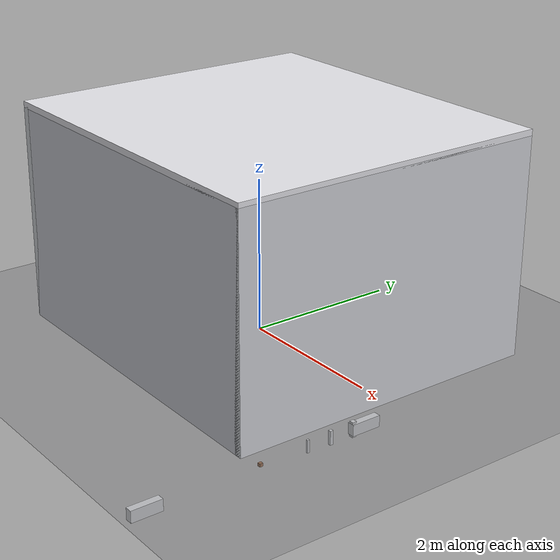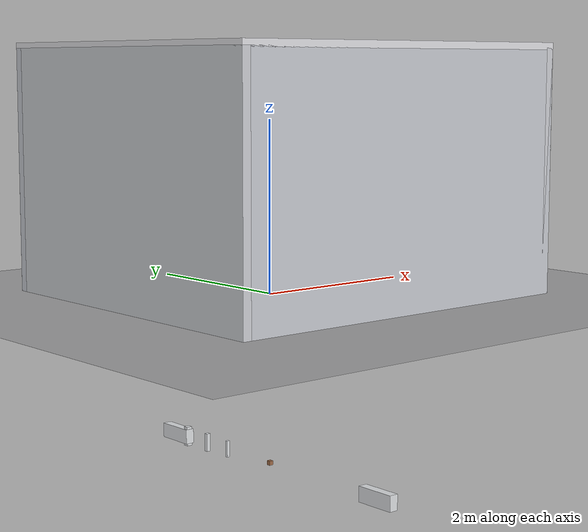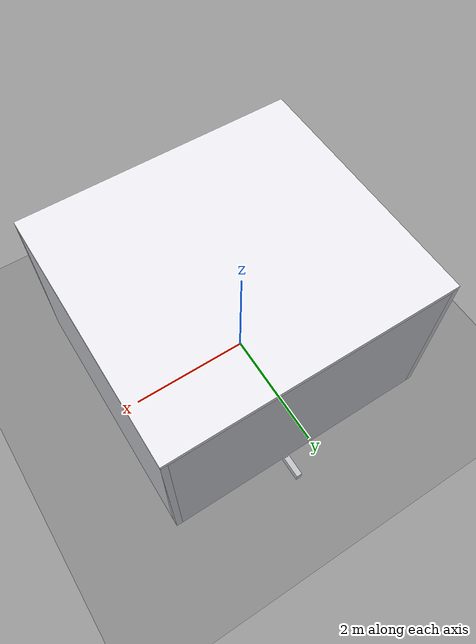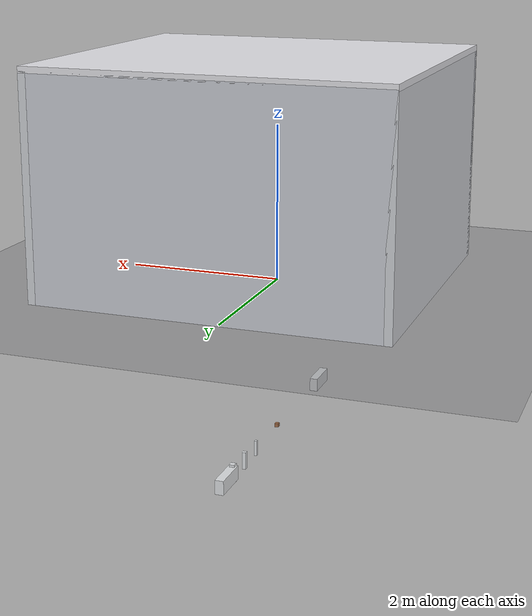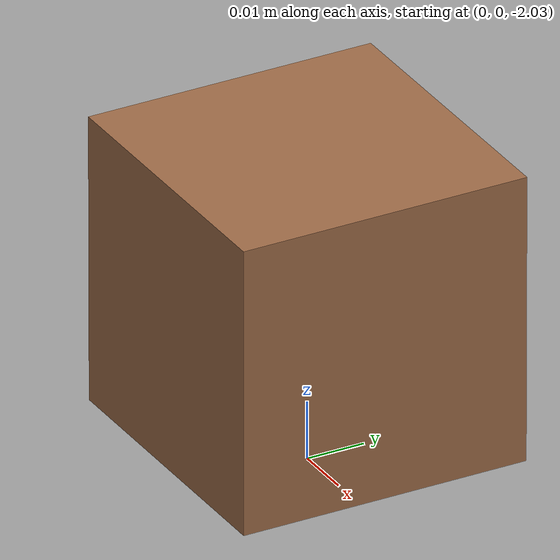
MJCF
<mujoco model="pact_place_corridor_v4">
  <compiler angle="radian" autolimits="true" boundmass="0" balanceinertia="true"/>
  <option impratio="10" gravity="0 0 -9.8" integrator="implicitfast" cone="elliptic" jacobian="sparse" noslip_iterations="4">
    <flag multiccd="enable" contact="enable" warmstart="enable"/>
  </option>
  <size njmax="6000" nconmax="6000"/>
  <visual>
    <global offwidth="1280" offheight="720"/>
    <map znear="0.001"/>
    <headlight ambient="0.5 0.5 0.5" diffuse="0.65 0.65 0.65"/>
  </visual>
  <asset>
    <texture name="benchtex" type="2d" builtin="flat" rgb1="0.85 0.86 0.88" width="32" height="32"/>
    <material name="bench" texture="benchtex" reflectance="0.1"/>
    <texture name="floortex" type="2d" builtin="checker" rgb1="0.46 0.46 0.48" rgb2="0.40 0.40 0.42" width="300" height="300"/>
    <material name="floormat" texture="floortex" texrepeat="10 10" reflectance="0.05"/>
    <material name="traymat" rgba="0.25 0.48 0.68 1" reflectance="0.08"/>
  </asset>
  <default>
    <default class="hood">
      <geom contype="8" conaffinity="15" group="0" friction="0.9 0.9 0.001"
            solref="0.02 1" solimp="0.998 0.998 0.001" density="700"
            rgba="0.88 0.89 0.90 1"/>
    </default>
  </default>
  <worldbody>
    <light name="l_key" pos="0.4 0.5 2.6" dir="0 0 -1" diffuse="0.95 0.95 0.95"/>
    <light name="l_fill" pos="-0.6 -0.7 2.1" dir="0.3 0.3 -1" diffuse="0.5 0.5 0.5"/>
    <light name="l_hood" pos="0.85 0 1.55" dir="0 0 -1" diffuse="0.6 0.6 0.6"/>
    <geom name="floor" type="plane" size="5 5 0.1" pos="0 0 0" material="floormat"
          contype="8" conaffinity="15"/>

    <geom name="room_wall_back" class="hood" type="box" pos="-2.0 0 1.4"
          size="0.05 2.05 1.4" rgba="0.82 0.83 0.85 1"/>
    <geom name="room_wall_front" class="hood" type="box" pos="2.4 0 1.4"
          size="0.05 2.05 1.4" rgba="0.82 0.83 0.85 1"/>
    <geom name="room_wall_left" class="hood" type="box" pos="0.2 2.0 1.4"
          size="2.25 0.05 1.4" rgba="0.80 0.81 0.84 1"/>
    <geom name="room_wall_right" class="hood" type="box" pos="0.2 -2.0 1.4"
          size="2.25 0.05 1.4" rgba="0.80 0.81 0.84 1"/>
    <geom name="room_ceiling" class="hood" type="box" pos="0.2 0 2.82"
          size="2.25 2.05 0.04" rgba="0.90 0.90 0.92 1"/>

    <geom name="bench_top" class="hood" type="box" pos="0.95 0 0.70"
          size="0.45 0.60 0.02" material="bench"/>
    <geom name="bench_body" class="hood" type="box" pos="0.95 0 0.35"
          size="0.42 0.57 0.33" rgba="0.80 0.81 0.83 1"/>
    <geom name="hood_side_l" class="hood" type="box" pos="0.95 0.45 1.12"
          size="0.40 0.012 0.40"/>
    <geom name="hood_side_r" class="hood" type="box" pos="0.95 -0.45 1.12"
          size="0.40 0.012 0.40"/>
    <geom name="hood_back" class="hood" type="box" pos="1.36 0 1.12"
          size="0.012 0.46 0.40"/>
    <geom name="hood_top" class="hood" type="box" pos="0.95 0 1.53"
          size="0.42 0.46 0.015"/>
    <geom name="hood_frame_l" class="hood" type="box" pos="0.58 0.45 1.12"
          size="0.02 0.02 0.40"/>
    <geom name="hood_frame_r" class="hood" type="box" pos="0.58 -0.45 1.12"
          size="0.02 0.02 0.40"/>

    <body name="sash" mocap="true" pos="0.58 0 1.30">
      <geom name="sash_g" class="hood" type="box" size="0.015 0.44 0.025"
            rgba="0.62 0.64 0.66 1"/>
    </body>
    <body name="jamb_l" mocap="true" pos="0.58 0.35 0.92">
      <geom name="jamb_l_g" class="hood" type="box" size="0.012 0.18 0.20"/>
    </body>
    <body name="jamb_r" mocap="true" pos="0.58 -0.35 0.92">
      <geom name="jamb_r_g" class="hood" type="box" size="0.012 0.18 0.20"/>
    </body>

    <!-- Legacy bars remain available because the inherited fumehood sampler parks
         them explicitly. They are never activated by the PACT corridor sampler. -->
    <body name="protr_s" mocap="true" pos="0 0.8 -2.0">
      <geom name="protr_s_g" class="hood" type="box" size="0.0175 0.0175 0.10"/>
    </body>
    <body name="protr_m" mocap="true" pos="0 1.2 -2.0">
      <geom name="protr_m_g" class="hood" type="box" size="0.025 0.025 0.11"/>
    </body>
    <body name="protr_l" mocap="true" pos="0 1.6 -2.0">
      <geom name="protr_l_g" class="hood" type="box" size="0.035 0.035 0.12"/>
    </body>

    <body name="pact_intrusion_left" mocap="true" pos="0 1.8 -2.0">
      <geom name="pact_intrusion_left_g" class="hood" type="box"
            size="0.055 0.240 0.090" rgba="0.88 0.89 0.90 1"/>
    </body>
    <body name="pact_intrusion_right" mocap="true" pos="0 -1.8 -2.0">
      <geom name="pact_intrusion_right_g" class="hood" type="box"
            size="0.055 0.240 0.090" rgba="0.88 0.89 0.90 1"/>
    </body>

    <body name="place_pedestal" pos="0.35 0.32 0">
      <geom name="place_pedestal_base_g" class="hood" type="box" pos="0 0 0.05"
            size="0.10 0.10 0.05" rgba="0.34 0.36 0.40 1"/>
      <geom name="place_pedestal_stem_g" class="hood" type="box" pos="0 0 0.39"
            size="0.07 0.07 0.29" rgba="0.40 0.42 0.46 1"/>
    </body>
    <body name="place_receptacle" pos="0.35 0.32 0">
      <!-- PickAndPlacePlannerPolicy queries the visual-only body AABB when it
           computes place height, so retain a non-colliding visual twin. -->
      <geom name="place_receptacle_floor_visual_g" type="box" pos="0 0 0.70"
            size="0.10 0.10 0.02" material="traymat" contype="0" conaffinity="0"
            group="1"/>
      <geom name="place_receptacle_floor_g" type="box" pos="0 0 0.70"
            size="0.10 0.10 0.02" material="traymat" contype="8" conaffinity="15"
            friction="1.1 0.9 0.002" solref="0.02 1" solimp="0.998 0.998 0.001"/>
    </body>
    <!-- Raised side rails retain lateral placement error. Both x edges stay
         open so neither the home arm nor link 2 obstructs the passage. -->
    <body name="place_receptacle_lips" pos="0.35 0.32 0">
      <geom name="place_receptacle_lip_left_g" type="box" pos="0 0.085 0.745"
            size="0.07 0.015 0.025" material="traymat" contype="8" conaffinity="15"/>
      <geom name="place_receptacle_lip_right_g" type="box" pos="0 -0.085 0.745"
            size="0.07 0.015 0.025" material="traymat" contype="8" conaffinity="15"/>
    </body>

    <body name="pact_clutter_00" mocap="true" pos="0 0 -2.0">
      <geom name="pact_clutter_00_g" class="hood" type="box"
            size="0.025 0.025 0.025" rgba="0.62 0.42 0.28 1"/>
    </body>
    <body name="pact_clutter_01" mocap="true" pos="0 0 -2.0">
      <geom name="pact_clutter_01_g" class="hood" type="box"
            size="0.025 0.025 0.025" rgba="0.62 0.42 0.28 1"/>
    </body>
    <body name="pact_clutter_02" mocap="true" pos="0 0 -2.0">
      <geom name="pact_clutter_02_g" class="hood" type="box"
            size="0.025 0.025 0.025" rgba="0.62 0.42 0.28 1"/>
    </body>
    <body name="pact_clutter_03" mocap="true" pos="0 0 -2.0">
      <geom name="pact_clutter_03_g" class="hood" type="box"
            size="0.025 0.025 0.025" rgba="0.62 0.42 0.28 1"/>
    </body>
    <body name="pact_clutter_04" mocap="true" pos="0 0 -2.0">
      <geom name="pact_clutter_04_g" class="hood" type="box"
            size="0.025 0.025 0.025" rgba="0.62 0.42 0.28 1"/>
    </body>
    <body name="pact_clutter_05" mocap="true" pos="0 0 -2.0">
      <geom name="pact_clutter_05_g" class="hood" type="box"
            size="0.025 0.025 0.025" rgba="0.62 0.42 0.28 1"/>
    </body>
    <body name="pact_clutter_06" mocap="true" pos="0 0 -2.0">
      <geom name="pact_clutter_06_g" class="hood" type="box"
            size="0.025 0.025 0.025" rgba="0.62 0.42 0.28 1"/>
    </body>
    <body name="pact_clutter_07" mocap="true" pos="0 0 -2.0">
      <geom name="pact_clutter_07_g" class="hood" type="box"
            size="0.025 0.025 0.025" rgba="0.62 0.42 0.28 1"/>
    </body>
    <body name="pact_clutter_08" mocap="true" pos="0 0 -2.0">
      <geom name="pact_clutter_08_g" class="hood" type="box"
            size="0.025 0.025 0.025" rgba="0.62 0.42 0.28 1"/>
    </body>
    <body name="pact_clutter_09" mocap="true" pos="0 0 -2.0">
      <geom name="pact_clutter_09_g" class="hood" type="box"
            size="0.025 0.025 0.025" rgba="0.62 0.42 0.28 1"/>
    </body>
    <body name="pact_clutter_10" mocap="true" pos="0 0 -2.0">
      <geom name="pact_clutter_10_g" class="hood" type="box"
            size="0.025 0.025 0.025" rgba="0.62 0.42 0.28 1"/>
    </body>
    <body name="pact_clutter_11" mocap="true" pos="0 0 -2.0">
      <geom name="pact_clutter_11_g" class="hood" type="box"
            size="0.025 0.025 0.025" rgba="0.62 0.42 0.28 1"/>
    </body>
    <body name="pact_clutter_12" mocap="true" pos="0 0 -2.0">
      <geom name="pact_clutter_12_g" class="hood" type="box"
            size="0.025 0.025 0.025" rgba="0.62 0.42 0.28 1"/>
    </body>
    <body name="pact_clutter_13" mocap="true" pos="0 0 -2.0">
      <geom name="pact_clutter_13_g" class="hood" type="box"
            size="0.025 0.025 0.025" rgba="0.62 0.42 0.28 1"/>
    </body>
    <body name="pact_clutter_14" mocap="true" pos="0 0 -2.0">
      <geom name="pact_clutter_14_g" class="hood" type="box"
            size="0.025 0.025 0.025" rgba="0.62 0.42 0.28 1"/>
    </body>
    <body name="pact_clutter_15" mocap="true" pos="0 0 -2.0">
      <geom name="pact_clutter_15_g" class="hood" type="box"
            size="0.025 0.025 0.025" rgba="0.62 0.42 0.28 1"/>
    </body>
  </worldbody>
</mujoco>
